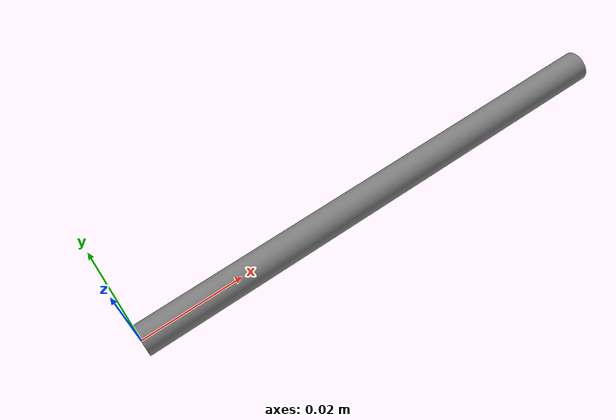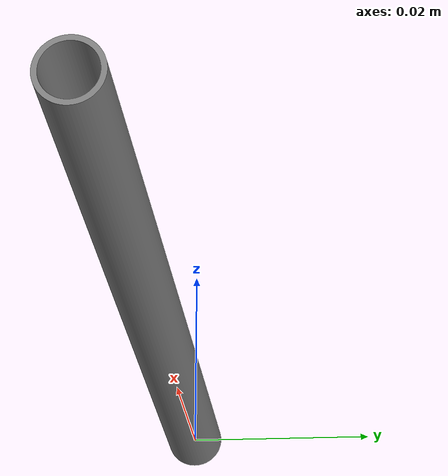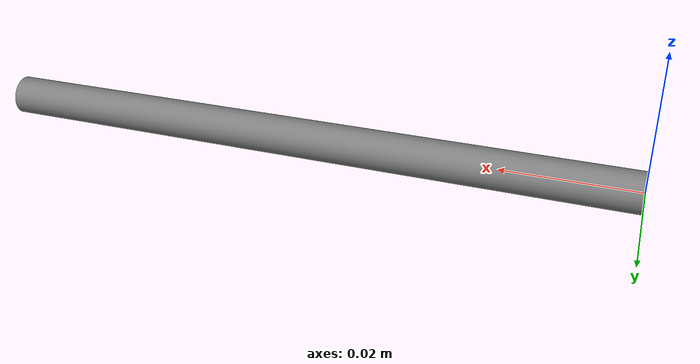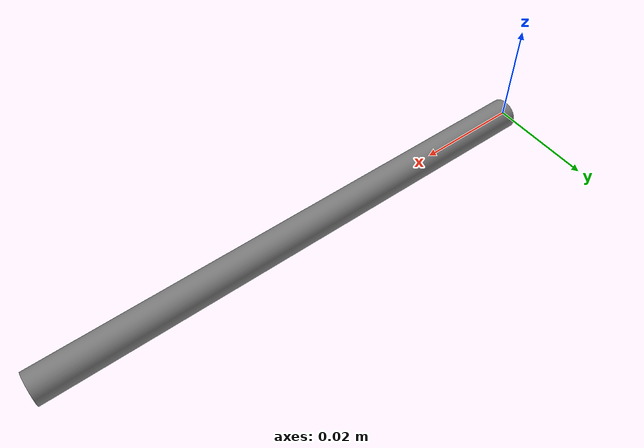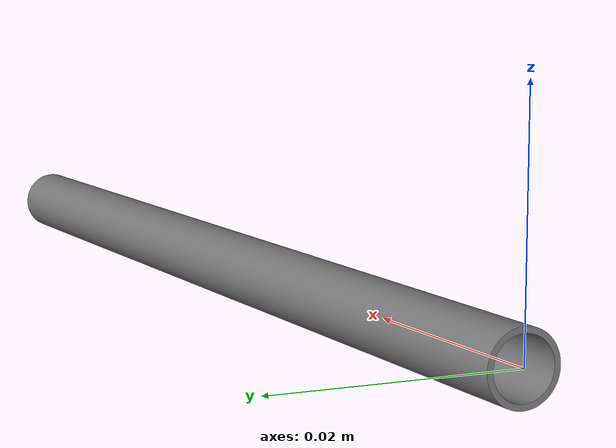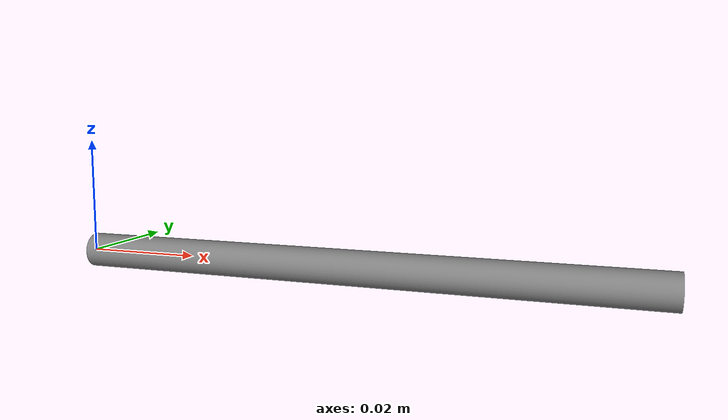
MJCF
<mujoco model="wp">
    <asset>
        <!-- 声明 mesh -->
        <mesh name="wp_mesh" file="wpp.stl"/>
    </asset>

    <worldbody>
        <!-- 把 mesh 放在世界中，并添加旋转 -->
        <geom type="mesh" mesh="wp_mesh" rgba="0.5 0.5 0.5 1"
              pos="0 0 0" />
    </worldbody>
</mujoco>
